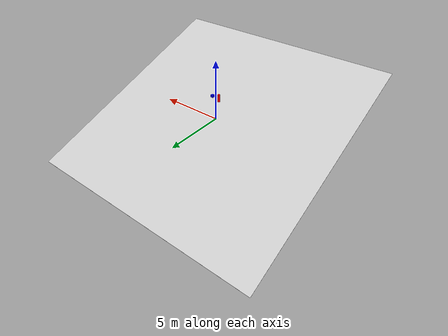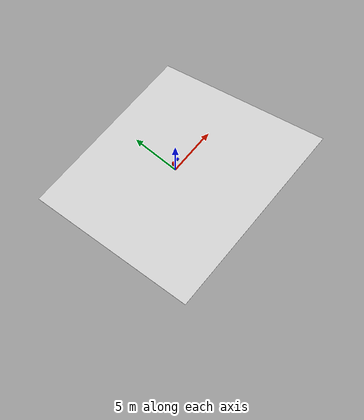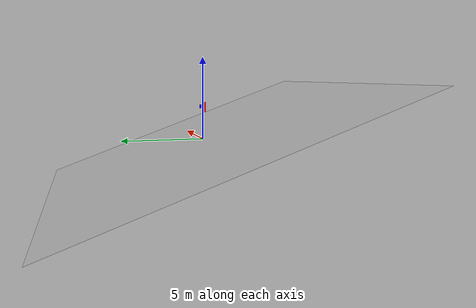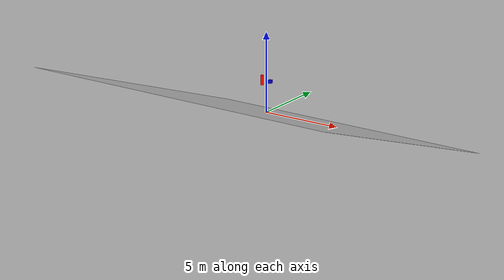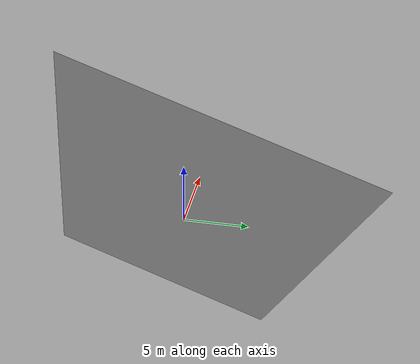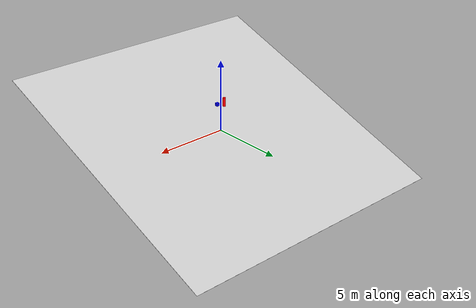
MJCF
<?xml version="1.0" encoding="UTF-8"?>
<mujoco model="rolling_cylinder_vs_sliding_block">
    <compiler angle="radian"/>
    <option gravity="0 0 -9.81"/>

    <worldbody>
        <!-- Inclined Plane (Static) -->
        <body name="object_1" pos="0 0 0">
            <geom name="ramp" type="plane" size="10 10 0.1" rgba="0.8 0.8 0.8 1"
                  euler="-0.35 0 0" friction="1 0.005 0.0001" condim="4"/>
        </body>

        <!-- Cylinder (Dynamic, Rolling) -->
        <body name="object_2" pos="-0.3 0 2">
            <joint name="object_2_joint" type="free"/>
            <geom name="cylinder_geom" type="cylinder" size="0.1 0.3" mass="1"
                    rgba="1 0 0 1" friction="0.8 0.005 0.0001" condim="4"/>
        </body>

        <!-- Block (Dynamic, Sliding) -->
        <body name="object_3" pos="0.3 0 2">
            <joint name="object_3_joint" type="free"/>
            <geom name="block_geom" type="box" size="0.1 0.1 0.1" mass="1"
                    rgba="0 0 1 1" friction="0.1 0.005 0.0001" condim="4"/>
        </body>
    </worldbody>

    <actuator>
        <!-- No actuators needed; gravity and friction handle motion -->
    </actuator>
</mujoco>
